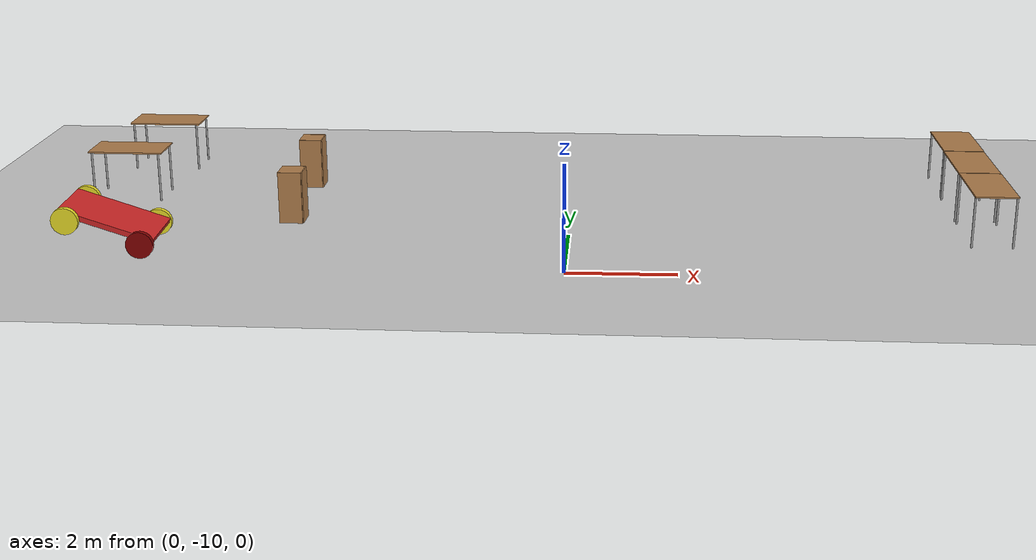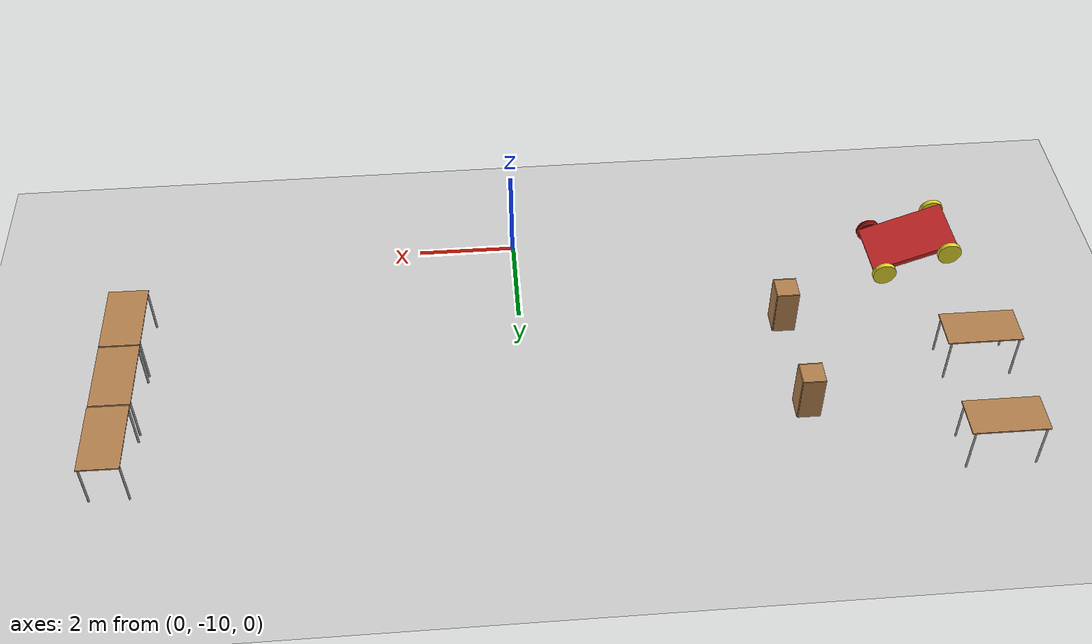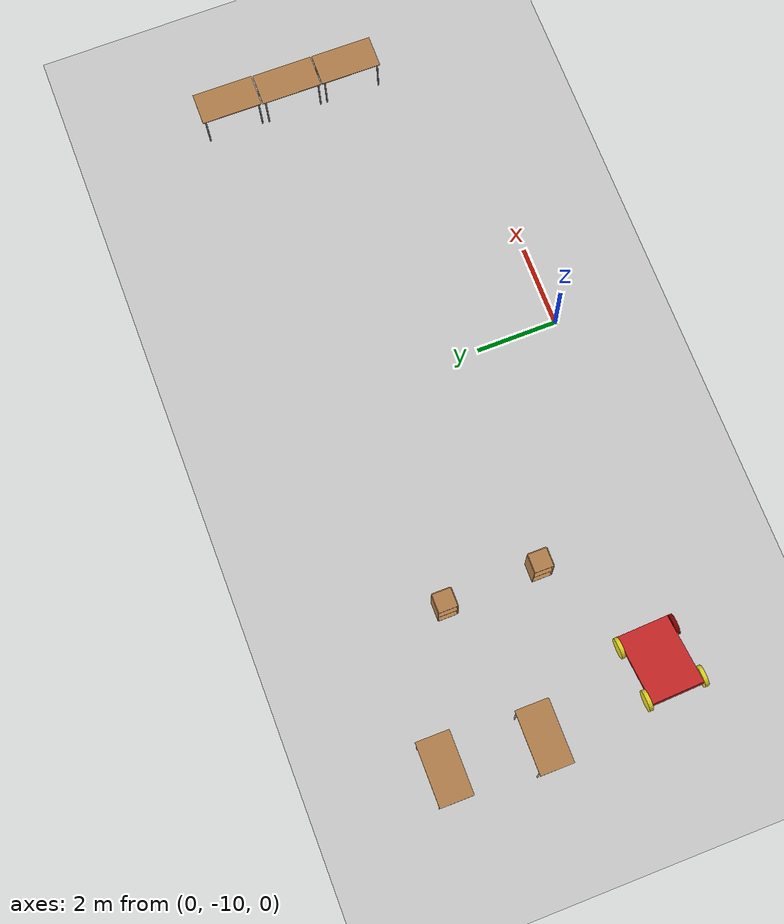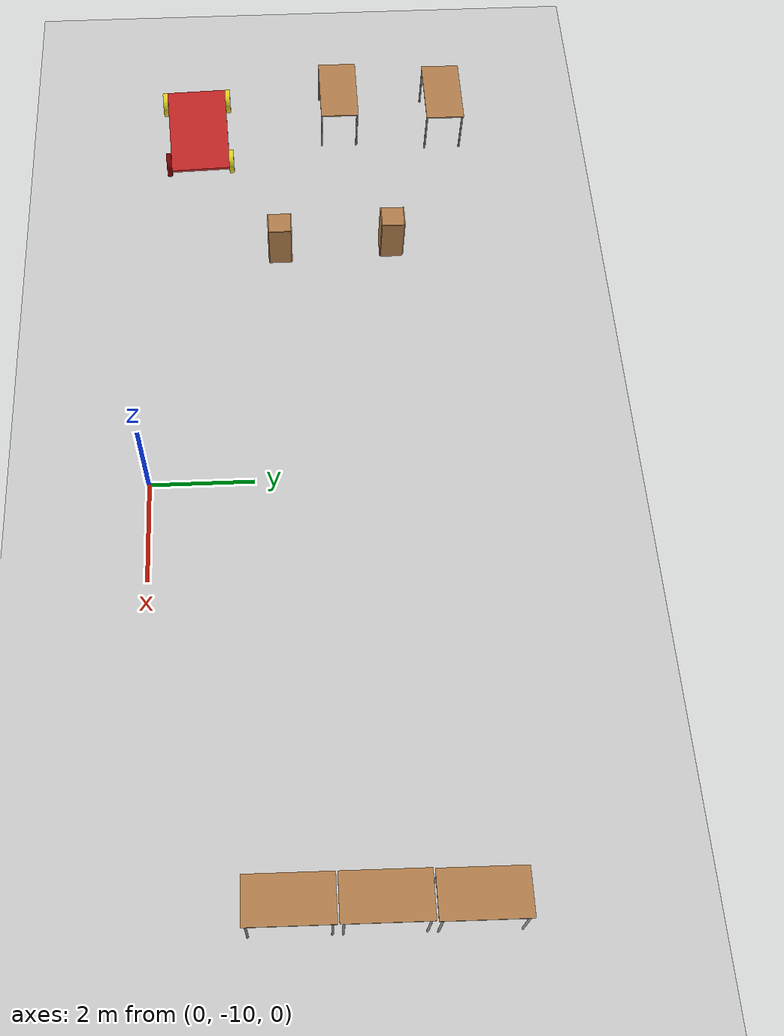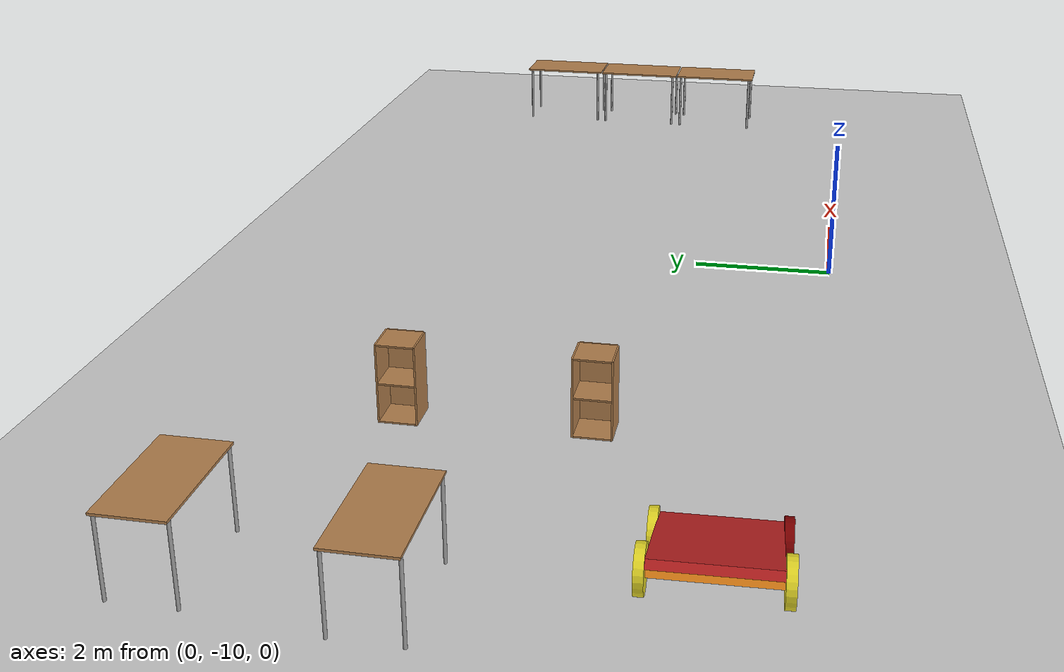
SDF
<sdf version="1.6">
 <world name="default">
  <model name="ground_plane">
   <static>1</static>
   <link name="link">
    <collision name="collision">
     <geometry><plane><normal>0 0 1</normal><size>100 100</size></plane></geometry>
     <surface>
      <contact><collide_bitmask>65535</collide_bitmask></contact>
      <friction><ode><mu>100</mu><mu2>50</mu2></ode></friction>
     </surface>
    </collision>
    <visual name="visual">
     <cast_shadows>0</cast_shadows>
     <geometry><plane><normal>0 0 1</normal><size>100 100</size></plane></geometry>
     <material>
      <script><uri>file://media/materials/scripts/gazebo.material</uri><name>Gazebo/Grey</name></script>
     </material>
    </visual>
   </link>
  </model>
  <model name="table">
   <static>1</static>
   <link name="link">
    <collision name="surface">
     <pose>0 0 1 0 -0 0</pose>
     <geometry><box><size>1.5 0.8 0.03</size></box></geometry>
     <surface><friction><ode><mu>0.6</mu><mu2>0.6</mu2></ode></friction></surface>
    </collision>
    <visual name="visual1">
     <pose>0 0 1 0 -0 0</pose>
     <geometry><box><size>1.5 0.8 0.03</size></box></geometry>
     <material>
      <script><uri>file://media/materials/scripts/gazebo.material</uri><name>Gazebo/Wood</name></script>
     </material>
    </visual>
    <collision name="front_left_leg">
     <pose>0.68 0.38 0.5 0 -0 0</pose>
     <geometry><cylinder><radius>0.02</radius><length>1</length></cylinder></geometry>
    </collision>
    <visual name="front_left_leg">
     <pose>0.68 0.38 0.5 0 -0 0</pose>
     <geometry><cylinder><radius>0.02</radius><length>1</length></cylinder></geometry>
     <material>
      <script><uri>file://media/materials/scripts/gazebo.material</uri><name>Gazebo/Grey</name></script>
     </material>
    </visual>
    <collision name="front_right_leg">
     <pose>0.68 -0.38 0.5 0 -0 0</pose>
     <geometry><cylinder><radius>0.02</radius><length>1</length></cylinder></geometry>
    </collision>
    <visual name="front_right_leg">
     <pose>0.68 -0.38 0.5 0 -0 0</pose>
     <geometry><cylinder><radius>0.02</radius><length>1</length></cylinder></geometry>
     <material>
      <script><uri>file://media/materials/scripts/gazebo.material</uri><name>Gazebo/Grey</name></script>
     </material>
    </visual>
    <collision name="back_right_leg">
     <pose>-0.68 -0.38 0.5 0 -0 0</pose>
     <geometry><cylinder><radius>0.02</radius><length>1</length></cylinder></geometry>
    </collision>
    <visual name="back_right_leg">
     <pose>-0.68 -0.38 0.5 0 -0 0</pose>
     <geometry><cylinder><radius>0.02</radius><length>1</length></cylinder></geometry>
     <material>
      <script><uri>file://media/materials/scripts/gazebo.material</uri><name>Gazebo/Grey</name></script>
     </material>
    </visual>
    <collision name="back_left_leg">
     <pose>-0.68 0.38 0.5 0 -0 0</pose>
     <geometry><cylinder><radius>0.02</radius><length>1</length></cylinder></geometry>
    </collision>
    <visual name="back_left_leg">
     <pose>-0.68 0.38 0.5 0 -0 0</pose>
     <geometry><cylinder><radius>0.02</radius><length>1</length></cylinder></geometry>
     <material>
      <script><uri>file://media/materials/scripts/gazebo.material</uri><name>Gazebo/Grey</name></script>
     </material>
    </visual>
   </link>
   <pose>-8.89453 -3.69923 0 0 -0 0</pose>
  </model>
  <model name="table_0">
   <static>1</static>
   <link name="link">
    <collision name="surface">
     <pose>0 0 1 0 -0 0</pose>
     <geometry><box><size>1.5 0.8 0.03</size></box></geometry>
     <surface><friction><ode><mu>0.6</mu><mu2>0.6</mu2></ode></friction></surface>
    </collision>
    <visual name="visual1">
     <pose>0 0 1 0 -0 0</pose>
     <geometry><box><size>1.5 0.8 0.03</size></box></geometry>
     <material>
      <script><uri>file://media/materials/scripts/gazebo.material</uri><name>Gazebo/Wood</name></script>
     </material>
    </visual>
    <collision name="front_left_leg">
     <pose>0.68 0.38 0.5 0 -0 0</pose>
     <geometry><cylinder><radius>0.02</radius><length>1</length></cylinder></geometry>
    </collision>
    <visual name="front_left_leg">
     <pose>0.68 0.38 0.5 0 -0 0</pose>
     <geometry><cylinder><radius>0.02</radius><length>1</length></cylinder></geometry>
     <material>
      <script><uri>file://media/materials/scripts/gazebo.material</uri><name>Gazebo/Grey</name></script>
     </material>
    </visual>
    <collision name="front_right_leg">
     <pose>0.68 -0.38 0.5 0 -0 0</pose>
     <geometry><cylinder><radius>0.02</radius><length>1</length></cylinder></geometry>
    </collision>
    <visual name="front_right_leg">
     <pose>0.68 -0.38 0.5 0 -0 0</pose>
     <geometry><cylinder><radius>0.02</radius><length>1</length></cylinder></geometry>
     <material>
      <script><uri>file://media/materials/scripts/gazebo.material</uri><name>Gazebo/Grey</name></script>
     </material>
    </visual>
    <collision name="back_right_leg">
     <pose>-0.68 -0.38 0.5 0 -0 0</pose>
     <geometry><cylinder><radius>0.02</radius><length>1</length></cylinder></geometry>
    </collision>
    <visual name="back_right_leg">
     <pose>-0.68 -0.38 0.5 0 -0 0</pose>
     <geometry><cylinder><radius>0.02</radius><length>1</length></cylinder></geometry>
     <material>
      <script><uri>file://media/materials/scripts/gazebo.material</uri><name>Gazebo/Grey</name></script>
     </material>
    </visual>
    <collision name="back_left_leg">
     <pose>-0.68 0.38 0.5 0 -0 0</pose>
     <geometry><cylinder><radius>0.02</radius><length>1</length></cylinder></geometry>
    </collision>
    <visual name="back_left_leg">
     <pose>-0.68 0.38 0.5 0 -0 0</pose>
     <geometry><cylinder><radius>0.02</radius><length>1</length></cylinder></geometry>
     <material>
      <script><uri>file://media/materials/scripts/gazebo.material</uri><name>Gazebo/Grey</name></script>
     </material>
    </visual>
   </link>
   <pose>-9.03842 -5.96629 0 0 -0 0</pose>
  </model>
  <model name="cabinet">
   <static>1</static>
   <link name="cabinet_bottom_plate">
    <inertial>
     <pose>0 0 -1 0 -0 0</pose>
     <inertia><ixx>2.05</ixx><ixy>0</ixy><ixz>0</ixz><iyy>2.05</iyy><iyz>0</iyz><izz>2.05</izz></inertia>
     <mass>25</mass>
    </inertial>
    <collision name="cabinet_bottom_plate_geom">
     <pose>0 0 0.01 0 -0 0</pose>
     <geometry><box><size>0.45 0.45 0.02</size></box></geometry>
    </collision>
    <visual name="cabinet_bottom_plate_geom_visual">
     <pose>0 0 0.01 0 -0 0</pose>
     <geometry><box><size>0.45 0.45 0.02</size></box></geometry>
     <material>
      <script><uri>file://media/materials/scripts/gazebo.material</uri><name>Gazebo/Wood</name></script>
     </material>
    </visual>
    <collision name="cabinet_bottom_plate_geom_cabinet_back_plate">
     <pose>0.235 0 0.51 0 -0 0</pose>
     <geometry><box><size>0.02 0.45 1.02</size></box></geometry>
    </collision>
    <visual name="cabinet_bottom_plate_geom_cabinet_back_plate_visual">
     <pose>0.235 0 0.51 0 -0 0</pose>
     <geometry><box><size>0.02 0.45 1.02</size></box></geometry>
     <material>
      <script><uri>file://media/materials/scripts/gazebo.material</uri><name>Gazebo/Wood</name></script>
     </material>
    </visual>
    <collision name="cabinet_bottom_plate_geom_cabinet_left_plate">
     <pose>0 0.235 0.51 0 -0 0</pose>
     <geometry><box><size>0.45 0.02 1.02</size></box></geometry>
    </collision>
    <visual name="cabinet_bottom_plate_geom_cabinet_left_plate_visual">
     <pose>0 0.235 0.51 0 -0 0</pose>
     <geometry><box><size>0.45 0.02 1.02</size></box></geometry>
     <material>
      <script><uri>file://media/materials/scripts/gazebo.material</uri><name>Gazebo/Wood</name></script>
     </material>
    </visual>
    <collision name="cabinet_bottom_plate_geom_cabinet_middle_plate">
     <pose>0 0 0.51 0 -0 0</pose>
     <geometry><box><size>0.45 0.45 0.02</size></box></geometry>
    </collision>
    <visual name="cabinet_bottom_plate_geom_cabinet_middle_plate_visual">
     <pose>0 0 0.51 0 -0 0</pose>
     <geometry><box><size>0.45 0.45 0.02</size></box></geometry>
     <material>
      <script><uri>file://media/materials/scripts/gazebo.material</uri><name>Gazebo/Wood</name></script>
     </material>
    </visual>
    <collision name="cabinet_bottom_plate_geom_cabinet_right_plate">
     <pose>0 -0.235 0.51 0 -0 0</pose>
     <geometry><box><size>0.45 0.02 1.02</size></box></geometry>
    </collision>
    <visual name="cabinet_bottom_plate_geom_cabinet_right_plate_visual">
     <pose>0 -0.235 0.51 0 -0 0</pose>
     <geometry><box><size>0.45 0.02 1.02</size></box></geometry>
     <material>
      <script><uri>file://media/materials/scripts/gazebo.material</uri><name>Gazebo/Wood</name></script>
     </material>
    </visual>
    <collision name="cabinet_bottom_plate_geom_cabinet_top_plate">
     <pose>0 0 1.01 0 -0 0</pose>
     <geometry><box><size>0.45 0.45 0.02</size></box></geometry>
    </collision>
    <visual name="cabinet_bottom_plate_geom_cabinet_top_plate_visual">
     <pose>0 0 1.01 0 -0 0</pose>
     <geometry><box><size>0.45 0.45 0.02</size></box></geometry>
     <material>
      <script><uri>file://media/materials/scripts/gazebo.material</uri><name>Gazebo/Wood</name></script>
     </material>
    </visual>
   </link>
   <pose>-5.48498 -5.024 0 0 -0 0</pose>
  </model>
  <model name="cabinet_0">
   <static>1</static>
   <link name="cabinet_bottom_plate">
    <inertial>
     <pose>0 0 -1 0 -0 0</pose>
     <inertia><ixx>2.05</ixx><ixy>0</ixy><ixz>0</ixz><iyy>2.05</iyy><iyz>0</iyz><izz>2.05</izz></inertia>
     <mass>25</mass>
    </inertial>
    <collision name="cabinet_bottom_plate_geom">
     <pose>0 0 0.01 0 -0 0</pose>
     <geometry><box><size>0.45 0.45 0.02</size></box></geometry>
    </collision>
    <visual name="cabinet_bottom_plate_geom_visual">
     <pose>0 0 0.01 0 -0 0</pose>
     <geometry><box><size>0.45 0.45 0.02</size></box></geometry>
     <material>
      <script><uri>file://media/materials/scripts/gazebo.material</uri><name>Gazebo/Wood</name></script>
     </material>
    </visual>
    <collision name="cabinet_bottom_plate_geom_cabinet_back_plate">
     <pose>0.235 0 0.51 0 -0 0</pose>
     <geometry><box><size>0.02 0.45 1.02</size></box></geometry>
    </collision>
    <visual name="cabinet_bottom_plate_geom_cabinet_back_plate_visual">
     <pose>0.235 0 0.51 0 -0 0</pose>
     <geometry><box><size>0.02 0.45 1.02</size></box></geometry>
     <material>
      <script><uri>file://media/materials/scripts/gazebo.material</uri><name>Gazebo/Wood</name></script>
     </material>
    </visual>
    <collision name="cabinet_bottom_plate_geom_cabinet_left_plate">
     <pose>0 0.235 0.51 0 -0 0</pose>
     <geometry><box><size>0.45 0.02 1.02</size></box></geometry>
    </collision>
    <visual name="cabinet_bottom_plate_geom_cabinet_left_plate_visual">
     <pose>0 0.235 0.51 0 -0 0</pose>
     <geometry><box><size>0.45 0.02 1.02</size></box></geometry>
     <material>
      <script><uri>file://media/materials/scripts/gazebo.material</uri><name>Gazebo/Wood</name></script>
     </material>
    </visual>
    <collision name="cabinet_bottom_plate_geom_cabinet_middle_plate">
     <pose>0 0 0.51 0 -0 0</pose>
     <geometry><box><size>0.45 0.45 0.02</size></box></geometry>
    </collision>
    <visual name="cabinet_bottom_plate_geom_cabinet_middle_plate_visual">
     <pose>0 0 0.51 0 -0 0</pose>
     <geometry><box><size>0.45 0.45 0.02</size></box></geometry>
     <material>
      <script><uri>file://media/materials/scripts/gazebo.material</uri><name>Gazebo/Wood</name></script>
     </material>
    </visual>
    <collision name="cabinet_bottom_plate_geom_cabinet_right_plate">
     <pose>0 -0.235 0.51 0 -0 0</pose>
     <geometry><box><size>0.45 0.02 1.02</size></box></geometry>
    </collision>
    <visual name="cabinet_bottom_plate_geom_cabinet_right_plate_visual">
     <pose>0 -0.235 0.51 0 -0 0</pose>
     <geometry><box><size>0.45 0.02 1.02</size></box></geometry>
     <material>
      <script><uri>file://media/materials/scripts/gazebo.material</uri><name>Gazebo/Wood</name></script>
     </material>
    </visual>
    <collision name="cabinet_bottom_plate_geom_cabinet_top_plate">
     <pose>0 0 1.01 0 -0 0</pose>
     <geometry><box><size>0.45 0.45 0.02</size></box></geometry>
    </collision>
    <visual name="cabinet_bottom_plate_geom_cabinet_top_plate_visual">
     <pose>0 0 1.01 0 -0 0</pose>
     <geometry><box><size>0.45 0.45 0.02</size></box></geometry>
     <material>
      <script><uri>file://media/materials/scripts/gazebo.material</uri><name>Gazebo/Wood</name></script>
     </material>
    </visual>
   </link>
   <pose>-5.41384 -7.35141 0 0 -0 0</pose>
  </model>
  <model name="table_1">
   <static>1</static>
   <link name="link">
    <collision name="surface">
     <pose>0 0 1 0 -0 0</pose>
     <geometry><box><size>1.5 0.8 0.03</size></box></geometry>
     <surface><friction><ode><mu>0.6</mu><mu2>0.6</mu2></ode></friction></surface>
    </collision>
    <visual name="visual1">
     <pose>0 0 1 0 -0 0</pose>
     <geometry><box><size>1.5 0.8 0.03</size></box></geometry>
     <material>
      <script><uri>file://media/materials/scripts/gazebo.material</uri><name>Gazebo/Wood</name></script>
     </material>
    </visual>
    <collision name="front_left_leg">
     <pose>0.68 0.38 0.5 0 -0 0</pose>
     <geometry><cylinder><radius>0.02</radius><length>1</length></cylinder></geometry>
    </collision>
    <visual name="front_left_leg">
     <pose>0.68 0.38 0.5 0 -0 0</pose>
     <geometry><cylinder><radius>0.02</radius><length>1</length></cylinder></geometry>
     <material>
      <script><uri>file://media/materials/scripts/gazebo.material</uri><name>Gazebo/Grey</name></script>
     </material>
    </visual>
    <collision name="front_right_leg">
     <pose>0.68 -0.38 0.5 0 -0 0</pose>
     <geometry><cylinder><radius>0.02</radius><length>1</length></cylinder></geometry>
    </collision>
    <visual name="front_right_leg">
     <pose>0.68 -0.38 0.5 0 -0 0</pose>
     <geometry><cylinder><radius>0.02</radius><length>1</length></cylinder></geometry>
     <material>
      <script><uri>file://media/materials/scripts/gazebo.material</uri><name>Gazebo/Grey</name></script>
     </material>
    </visual>
    <collision name="back_right_leg">
     <pose>-0.68 -0.38 0.5 0 -0 0</pose>
     <geometry><cylinder><radius>0.02</radius><length>1</length></cylinder></geometry>
    </collision>
    <visual name="back_right_leg">
     <pose>-0.68 -0.38 0.5 0 -0 0</pose>
     <geometry><cylinder><radius>0.02</radius><length>1</length></cylinder></geometry>
     <material>
      <script><uri>file://media/materials/scripts/gazebo.material</uri><name>Gazebo/Grey</name></script>
     </material>
    </visual>
    <collision name="back_left_leg">
     <pose>-0.68 0.38 0.5 0 -0 0</pose>
     <geometry><cylinder><radius>0.02</radius><length>1</length></cylinder></geometry>
    </collision>
    <visual name="back_left_leg">
     <pose>-0.68 0.38 0.5 0 -0 0</pose>
     <geometry><cylinder><radius>0.02</radius><length>1</length></cylinder></geometry>
     <material>
      <script><uri>file://media/materials/scripts/gazebo.material</uri><name>Gazebo/Grey</name></script>
     </material>
    </visual>
   </link>
   <pose>7.89959 -4.52252 0 0 0 -1.57913</pose>
  </model>
  <model name="table_1_clone">
   <static>1</static>
   <link name="link">
    <collision name="surface">
     <pose>0 0 1 0 -0 0</pose>
     <geometry><box><size>1.5 0.8 0.03</size></box></geometry>
     <surface><friction><ode><mu>0.6</mu><mu2>0.6</mu2></ode></friction></surface>
    </collision>
    <visual name="visual1">
     <pose>0 0 1 0 -0 0</pose>
     <geometry><box><size>1.5 0.8 0.03</size></box></geometry>
     <material>
      <script><uri>file://media/materials/scripts/gazebo.material</uri><name>Gazebo/Wood</name></script>
     </material>
    </visual>
    <collision name="front_left_leg">
     <pose>0.68 0.38 0.5 0 -0 0</pose>
     <geometry><cylinder><radius>0.02</radius><length>1</length></cylinder></geometry>
    </collision>
    <visual name="front_left_leg">
     <pose>0.68 0.38 0.5 0 -0 0</pose>
     <geometry><cylinder><radius>0.02</radius><length>1</length></cylinder></geometry>
     <material>
      <script><uri>file://media/materials/scripts/gazebo.material</uri><name>Gazebo/Grey</name></script>
     </material>
    </visual>
    <collision name="front_right_leg">
     <pose>0.68 -0.38 0.5 0 -0 0</pose>
     <geometry><cylinder><radius>0.02</radius><length>1</length></cylinder></geometry>
    </collision>
    <visual name="front_right_leg">
     <pose>0.68 -0.38 0.5 0 -0 0</pose>
     <geometry><cylinder><radius>0.02</radius><length>1</length></cylinder></geometry>
     <material>
      <script><uri>file://media/materials/scripts/gazebo.material</uri><name>Gazebo/Grey</name></script>
     </material>
    </visual>
    <collision name="back_right_leg">
     <pose>-0.68 -0.38 0.5 0 -0 0</pose>
     <geometry><cylinder><radius>0.02</radius><length>1</length></cylinder></geometry>
    </collision>
    <visual name="back_right_leg">
     <pose>-0.68 -0.38 0.5 0 -0 0</pose>
     <geometry><cylinder><radius>0.02</radius><length>1</length></cylinder></geometry>
     <material>
      <script><uri>file://media/materials/scripts/gazebo.material</uri><name>Gazebo/Grey</name></script>
     </material>
    </visual>
    <collision name="back_left_leg">
     <pose>-0.68 0.38 0.5 0 -0 0</pose>
     <geometry><cylinder><radius>0.02</radius><length>1</length></cylinder></geometry>
    </collision>
    <visual name="back_left_leg">
     <pose>-0.68 0.38 0.5 0 -0 0</pose>
     <geometry><cylinder><radius>0.02</radius><length>1</length></cylinder></geometry>
     <material>
      <script><uri>file://media/materials/scripts/gazebo.material</uri><name>Gazebo/Grey</name></script>
     </material>
    </visual>
   </link>
   <pose>7.87584 -6.05432 0 0 0 -1.57913</pose>
  </model>
  <model name="table_1_clone_0">
   <static>1</static>
   <link name="link">
    <collision name="surface">
     <pose>0 0 1 0 -0 0</pose>
     <geometry><box><size>1.5 0.8 0.03</size></box></geometry>
     <surface><friction><ode><mu>0.6</mu><mu2>0.6</mu2></ode></friction></surface>
    </collision>
    <visual name="visual1">
     <pose>0 0 1 0 -0 0</pose>
     <geometry><box><size>1.5 0.8 0.03</size></box></geometry>
     <material>
      <script><uri>file://media/materials/scripts/gazebo.material</uri><name>Gazebo/Wood</name></script>
     </material>
    </visual>
    <collision name="front_left_leg">
     <pose>0.68 0.38 0.5 0 -0 0</pose>
     <geometry><cylinder><radius>0.02</radius><length>1</length></cylinder></geometry>
    </collision>
    <visual name="front_left_leg">
     <pose>0.68 0.38 0.5 0 -0 0</pose>
     <geometry><cylinder><radius>0.02</radius><length>1</length></cylinder></geometry>
     <material>
      <script><uri>file://media/materials/scripts/gazebo.material</uri><name>Gazebo/Grey</name></script>
     </material>
    </visual>
    <collision name="front_right_leg">
     <pose>0.68 -0.38 0.5 0 -0 0</pose>
     <geometry><cylinder><radius>0.02</radius><length>1</length></cylinder></geometry>
    </collision>
    <visual name="front_right_leg">
     <pose>0.68 -0.38 0.5 0 -0 0</pose>
     <geometry><cylinder><radius>0.02</radius><length>1</length></cylinder></geometry>
     <material>
      <script><uri>file://media/materials/scripts/gazebo.material</uri><name>Gazebo/Grey</name></script>
     </material>
    </visual>
    <collision name="back_right_leg">
     <pose>-0.68 -0.38 0.5 0 -0 0</pose>
     <geometry><cylinder><radius>0.02</radius><length>1</length></cylinder></geometry>
    </collision>
    <visual name="back_right_leg">
     <pose>-0.68 -0.38 0.5 0 -0 0</pose>
     <geometry><cylinder><radius>0.02</radius><length>1</length></cylinder></geometry>
     <material>
      <script><uri>file://media/materials/scripts/gazebo.material</uri><name>Gazebo/Grey</name></script>
     </material>
    </visual>
    <collision name="back_left_leg">
     <pose>-0.68 0.38 0.5 0 -0 0</pose>
     <geometry><cylinder><radius>0.02</radius><length>1</length></cylinder></geometry>
    </collision>
    <visual name="back_left_leg">
     <pose>-0.68 0.38 0.5 0 -0 0</pose>
     <geometry><cylinder><radius>0.02</radius><length>1</length></cylinder></geometry>
     <material>
      <script><uri>file://media/materials/scripts/gazebo.material</uri><name>Gazebo/Grey</name></script>
     </material>
    </visual>
   </link>
   <pose>7.86338 -7.5835 0 0 0 -1.57913</pose>
  </model>
  <model name="rover_0">
   <link name="link_0">
    <inertial>
     <mass>1</mass>
     <inertia>
      <ixx>0.0164583</ixx>
      <ixy>0</ixy>
      <ixz>0</ixz>
      <iyy>0.0164583</iyy>
      <iyz>0</iyz>
      <izz>0.03125</izz>
     </inertia>
    </inertial>
    <pose>0.7 -0.675024 0.25 1.5707 -0 0</pose>
    <visual name="visual">
     <geometry><cylinder><radius>0.25</radius><length>0.1</length></cylinder></geometry>
     <material>
      <lighting>1</lighting>
      <script><uri>file://media/materials/scripts/gazebo.material</uri><name>Gazebo/Grey</name></script>
      <shader type="vertex"><normal_map>__default__</normal_map></shader>
      <ambient>0.5 0 0 1</ambient>
      <diffuse>0.5 0 0 1</diffuse>
      <specular>0.5 0 0 1</specular>
      <emissive>0.5 0 0 1</emissive>
     </material>
    </visual>
    <collision name="collision">
     <geometry><cylinder><radius>0.25</radius><length>0.1</length></cylinder></geometry>
     <surface>
      <friction>
       <ode><mu>1</mu><mu2>1</mu2><fdir1>0 0 0</fdir1><slip1>0</slip1><slip2>0</slip2></ode>
       <torsional>
        <coefficient>1</coefficient>
        <patch_radius>0</patch_radius>
        <surface_radius>0</surface_radius>
        <use_patch_radius>1</use_patch_radius>
        <ode><slip>0</slip></ode>
       </torsional>
      </friction>
      <bounce><restitution_coefficient>0</restitution_coefficient><threshold>1e+06</threshold></bounce>
      <contact>
       <collide_without_contact>0</collide_without_contact>
       <collide_without_contact_bitmask>1</collide_without_contact_bitmask>
       <collide_bitmask>1</collide_bitmask>
       <ode>
        <soft_cfm>0</soft_cfm>
        <soft_erp>0.2</soft_erp>
        <kp>1e+13</kp>
        <kd>1</kd>
        <max_vel>0.01</max_vel>
        <min_depth>0</min_depth>
       </ode>
       <bullet>
        <split_impulse>1</split_impulse>
        <split_impulse_penetration_threshold>-0.01</split_impulse_penetration_threshold>
        <soft_cfm>0</soft_cfm>
        <soft_erp>0.2</soft_erp>
        <kp>1e+13</kp>
        <kd>1</kd>
       </bullet>
      </contact>
     </surface>
    </collision>
   </link>
   <link name="link_0_0">
    <inertial>
     <mass>0.341385</mass>
     <inertia>
      <ixx>0.0369487</ixx>
      <ixy>0</ixy>
      <ixz>0</ixz>
      <iyy>0.147803</iyy>
      <iyz>0</iyz>
      <izz>0.183752</izz>
     </inertia>
    </inertial>
    <pose>-0 0 0.35 0 -0 0</pose>
    <visual name="visual">
     <geometry><box><size>1.8 1.25 0.1</size></box></geometry>
     <material>
      <lighting>1</lighting>
      <script><uri>file://media/materials/scripts/gazebo.material</uri><name>Gazebo/Red</name></script>
      <shader type="vertex"><normal_map>__default__</normal_map></shader>
      <ambient>1 0 0 1</ambient>
      <diffuse>1 0 0 1</diffuse>
      <specular>1 0 0 1</specular>
      <emissive>1 0 0 1</emissive>
     </material>
    </visual>
    <collision name="collision">
     <geometry><box><size>1.8 1.25 0.1</size></box></geometry>
     <surface>
      <friction>
       <ode><mu>1</mu><mu2>1</mu2><fdir1>0 0 0</fdir1><slip1>0</slip1><slip2>0</slip2></ode>
       <torsional>
        <coefficient>1</coefficient>
        <patch_radius>0</patch_radius>
        <surface_radius>0</surface_radius>
        <use_patch_radius>1</use_patch_radius>
        <ode><slip>0</slip></ode>
       </torsional>
      </friction>
      <bounce><restitution_coefficient>0</restitution_coefficient><threshold>1e+06</threshold></bounce>
      <contact>
       <collide_without_contact>0</collide_without_contact>
       <collide_without_contact_bitmask>1</collide_without_contact_bitmask>
       <collide_bitmask>1</collide_bitmask>
       <ode>
        <soft_cfm>0</soft_cfm>
        <soft_erp>0.2</soft_erp>
        <kp>1e+13</kp>
        <kd>1</kd>
        <max_vel>0.01</max_vel>
        <min_depth>0</min_depth>
       </ode>
       <bullet>
        <split_impulse>1</split_impulse>
        <split_impulse_penetration_threshold>-0.01</split_impulse_penetration_threshold>
        <soft_cfm>0</soft_cfm>
        <soft_erp>0.2</soft_erp>
        <kp>1e+13</kp>
        <kd>1</kd>
       </bullet>
      </contact>
     </surface>
    </collision>
   </link>
   <link name="link_0_clone">
    <inertial>
     <mass>1</mass>
     <inertia><ixx>0.145833</ixx><ixy>0</ixy><ixz>0</ixz><iyy>0.145833</iyy><iyz>0</iyz><izz>0.125</izz></inertia>
    </inertial>
    <pose>0.7 0.667373 0.250004 1.5707 -0 0</pose>
    <visual name="visual">
     <geometry><cylinder><radius>0.25</radius><length>0.1</length></cylinder></geometry>
     <material>
      <lighting>1</lighting>
      <script><uri>file://media/materials/scripts/gazebo.material</uri><name>Gazebo/Yellow</name></script>
      <shader type="vertex"><normal_map>__default__</normal_map></shader>
      <ambient>0.5 0 0 1</ambient>
      <diffuse>0.5 0 0 1</diffuse>
      <specular>0.5 0 0 1</specular>
      <emissive>0.5 0 0 1</emissive>
     </material>
    </visual>
    <collision name="collision">
     <geometry><cylinder><radius>0.25</radius><length>0.1</length></cylinder></geometry>
     <surface>
      <friction>
       <ode><mu>1</mu><mu2>1</mu2><fdir1>0 0 0</fdir1><slip1>0</slip1><slip2>0</slip2></ode>
       <torsional>
        <coefficient>1</coefficient>
        <patch_radius>0</patch_radius>
        <surface_radius>0</surface_radius>
        <use_patch_radius>1</use_patch_radius>
        <ode><slip>0</slip></ode>
       </torsional>
      </friction>
      <bounce><restitution_coefficient>0</restitution_coefficient><threshold>1e+06</threshold></bounce>
      <contact>
       <collide_without_contact>0</collide_without_contact>
       <collide_without_contact_bitmask>1</collide_without_contact_bitmask>
       <collide_bitmask>1</collide_bitmask>
       <ode>
        <soft_cfm>0</soft_cfm>
        <soft_erp>0.2</soft_erp>
        <kp>1e+13</kp>
        <kd>1</kd>
        <max_vel>0.01</max_vel>
        <min_depth>0</min_depth>
       </ode>
       <bullet>
        <split_impulse>1</split_impulse>
        <split_impulse_penetration_threshold>-0.01</split_impulse_penetration_threshold>
        <soft_cfm>0</soft_cfm>
        <soft_erp>0.2</soft_erp>
        <kp>1e+13</kp>
        <kd>1</kd>
       </bullet>
      </contact>
     </surface>
    </collision>
   </link>
   <link name="link_0_clone_0">
    <inertial>
     <mass>1</mass>
     <inertia>
      <ixx>0.0164583</ixx>
      <ixy>0</ixy>
      <ixz>0</ixz>
      <iyy>0.0164583</iyy>
      <iyz>0</iyz>
      <izz>0.03125</izz>
     </inertia>
    </inertial>
    <pose>-0.7 -0.67687 0.25 1.5707 -0 0</pose>
    <visual name="visual">
     <geometry><cylinder><radius>0.25</radius><length>0.1</length></cylinder></geometry>
     <material>
      <lighting>1</lighting>
      <script><uri>file://media/materials/scripts/gazebo.material</uri><name>Gazebo/Yellow</name></script>
      <shader type="vertex"><normal_map>__default__</normal_map></shader>
      <ambient>0.5 0 0 1</ambient>
      <diffuse>0.5 0 0 1</diffuse>
      <specular>0.5 0 0 1</specular>
      <emissive>0.5 0 0 1</emissive>
     </material>
    </visual>
    <collision name="collision">
     <geometry><cylinder><radius>0.25</radius><length>0.1</length></cylinder></geometry>
     <surface>
      <friction>
       <ode><mu>1</mu><mu2>1</mu2><fdir1>0 0 0</fdir1><slip1>0</slip1><slip2>0</slip2></ode>
       <torsional>
        <coefficient>1</coefficient>
        <patch_radius>0</patch_radius>
        <surface_radius>0</surface_radius>
        <use_patch_radius>1</use_patch_radius>
        <ode><slip>0</slip></ode>
       </torsional>
      </friction>
      <bounce><restitution_coefficient>0</restitution_coefficient><threshold>1e+06</threshold></bounce>
      <contact>
       <collide_without_contact>0</collide_without_contact>
       <collide_without_contact_bitmask>1</collide_without_contact_bitmask>
       <collide_bitmask>1</collide_bitmask>
       <ode>
        <soft_cfm>0</soft_cfm>
        <soft_erp>0.2</soft_erp>
        <kp>1e+13</kp>
        <kd>1</kd>
        <max_vel>0.01</max_vel>
        <min_depth>0</min_depth>
       </ode>
       <bullet>
        <split_impulse>1</split_impulse>
        <split_impulse_penetration_threshold>-0.01</split_impulse_penetration_threshold>
        <soft_cfm>0</soft_cfm>
        <soft_erp>0.2</soft_erp>
        <kp>1e+13</kp>
        <kd>1</kd>
       </bullet>
      </contact>
     </surface>
    </collision>
   </link>
   <link name="link_0_clone_0_clone">
    <inertial>
     <mass>1</mass>
     <inertia>
      <ixx>0.0164583</ixx>
      <ixy>0</ixy>
      <ixz>0</ixz>
      <iyy>0.0164583</iyy>
      <iyz>0</iyz>
      <izz>0.03125</izz>
     </inertia>
    </inertial>
    <pose>-0.7 0.673178 0.25 1.5707 -0 0</pose>
    <visual name="visual">
     <geometry><cylinder><radius>0.25</radius><length>0.1</length></cylinder></geometry>
     <material>
      <lighting>1</lighting>
      <script><uri>file://media/materials/scripts/gazebo.material</uri><name>Gazebo/Yellow</name></script>
      <shader type="vertex"><normal_map>__default__</normal_map></shader>
      <ambient>0.5 0 0 1</ambient>
      <diffuse>0.5 0 0 1</diffuse>
      <specular>0.5 0 0 1</specular>
      <emissive>0.5 0 0 1</emissive>
     </material>
    </visual>
    <collision name="collision">
     <geometry><cylinder><radius>0.25</radius><length>0.1</length></cylinder></geometry>
     <surface>
      <friction>
       <ode><mu>1</mu><mu2>1</mu2><fdir1>0 0 0</fdir1><slip1>0</slip1><slip2>0</slip2></ode>
       <torsional>
        <coefficient>1</coefficient>
        <patch_radius>0</patch_radius>
        <surface_radius>0</surface_radius>
        <use_patch_radius>1</use_patch_radius>
        <ode><slip>0</slip></ode>
       </torsional>
      </friction>
      <bounce><restitution_coefficient>0</restitution_coefficient><threshold>1e+06</threshold></bounce>
      <contact>
       <collide_without_contact>0</collide_without_contact>
       <collide_without_contact_bitmask>1</collide_without_contact_bitmask>
       <collide_bitmask>1</collide_bitmask>
       <ode>
        <soft_cfm>0</soft_cfm>
        <soft_erp>0.2</soft_erp>
        <kp>1e+13</kp>
        <kd>1</kd>
        <max_vel>0.01</max_vel>
        <min_depth>0</min_depth>
       </ode>
       <bullet>
        <split_impulse>1</split_impulse>
        <split_impulse_penetration_threshold>-0.01</split_impulse_penetration_threshold>
        <soft_cfm>0</soft_cfm>
        <soft_erp>0.2</soft_erp>
        <kp>1e+13</kp>
        <kd>1</kd>
       </bullet>
      </contact>
     </surface>
    </collision>
   </link>
   <link name="link_1">
    <inertial>
     <mass>1</mass>
     <inertia>
      <ixx>0.166667</ixx>
      <ixy>0</ixy>
      <ixz>0</ixz>
      <iyy>0.166667</iyy>
      <iyz>0</iyz>
      <izz>0.166667</izz>
     </inertia>
    </inertial>
    <pose>0.7 -0 0.25 0 -0 0</pose>
    <visual name="visual">
     <geometry><box><size>0.2 1.25 0.1</size></box></geometry>
     <material>
      <lighting>1</lighting>
      <script><uri>file://media/materials/scripts/gazebo.material</uri><name>Gazebo/Orange</name></script>
      <emissive>0 0 0 1</emissive>
      <shader type="vertex"><normal_map>__default__</normal_map></shader>
      <ambient>0.3 0.3 0.3 1</ambient>
      <diffuse>0.7 0.7 0.7 1</diffuse>
      <specular>0.01 0.01 0.01 1</specular>
     </material>
    </visual>
    <collision name="collision">
     <geometry><box><size>0.2 1.25 0.1</size></box></geometry>
     <surface>
      <friction>
       <ode><mu>1</mu><mu2>1</mu2><fdir1>0 0 0</fdir1><slip1>0</slip1><slip2>0</slip2></ode>
       <torsional>
        <coefficient>1</coefficient>
        <patch_radius>0</patch_radius>
        <surface_radius>0</surface_radius>
        <use_patch_radius>1</use_patch_radius>
        <ode><slip>0</slip></ode>
       </torsional>
      </friction>
      <bounce><restitution_coefficient>0</restitution_coefficient><threshold>1e+06</threshold></bounce>
      <contact>
       <collide_without_contact>0</collide_without_contact>
       <collide_without_contact_bitmask>1</collide_without_contact_bitmask>
       <collide_bitmask>1</collide_bitmask>
       <ode>
        <soft_cfm>0</soft_cfm>
        <soft_erp>0.2</soft_erp>
        <kp>1e+13</kp>
        <kd>1</kd>
        <max_vel>0.01</max_vel>
        <min_depth>0</min_depth>
       </ode>
       <bullet>
        <split_impulse>1</split_impulse>
        <split_impulse_penetration_threshold>-0.01</split_impulse_penetration_threshold>
        <soft_cfm>0</soft_cfm>
        <soft_erp>0.2</soft_erp>
        <kp>1e+13</kp>
        <kd>1</kd>
       </bullet>
      </contact>
     </surface>
    </collision>
   </link>
   <link name="link_1_clone">
    <inertial>
     <mass>1</mass>
     <inertia>
      <ixx>0.166667</ixx>
      <ixy>0</ixy>
      <ixz>0</ixz>
      <iyy>0.166667</iyy>
      <iyz>0</iyz>
      <izz>0.166667</izz>
     </inertia>
    </inertial>
    <pose>-0.7 -0.001846 0.25 0 -0 0</pose>
    <visual name="visual">
     <geometry><box><size>0.2 1.25 0.1</size></box></geometry>
     <material>
      <lighting>1</lighting>
      <script><uri>file://media/materials/scripts/gazebo.material</uri><name>Gazebo/Orange</name></script>
      <emissive>0 0 0 1</emissive>
      <shader type="vertex"><normal_map>__default__</normal_map></shader>
      <ambient>0.3 0.3 0.3 1</ambient>
      <diffuse>0.7 0.7 0.7 1</diffuse>
      <specular>0.01 0.01 0.01 1</specular>
     </material>
    </visual>
    <collision name="collision">
     <geometry><box><size>0.2 1.25 0.1</size></box></geometry>
     <surface>
      <friction>
       <ode><mu>1</mu><mu2>1</mu2><fdir1>0 0 0</fdir1><slip1>0</slip1><slip2>0</slip2></ode>
       <torsional>
        <coefficient>1</coefficient>
        <patch_radius>0</patch_radius>
        <surface_radius>0</surface_radius>
        <use_patch_radius>1</use_patch_radius>
        <ode><slip>0</slip></ode>
       </torsional>
      </friction>
      <bounce><restitution_coefficient>0</restitution_coefficient><threshold>1e+06</threshold></bounce>
      <contact>
       <collide_without_contact>0</collide_without_contact>
       <collide_without_contact_bitmask>1</collide_without_contact_bitmask>
       <collide_bitmask>1</collide_bitmask>
       <ode>
        <soft_cfm>0</soft_cfm>
        <soft_erp>0.2</soft_erp>
        <kp>1e+13</kp>
        <kd>1</kd>
        <max_vel>0.01</max_vel>
        <min_depth>0</min_depth>
       </ode>
       <bullet>
        <split_impulse>1</split_impulse>
        <split_impulse_penetration_threshold>-0.01</split_impulse_penetration_threshold>
        <soft_cfm>0</soft_cfm>
        <soft_erp>0.2</soft_erp>
        <kp>1e+13</kp>
        <kd>1</kd>
       </bullet>
      </contact>
     </surface>
    </collision>
   </link>
   <joint name="link_0_0_JOINT_11" type="fixed">
    <parent>link_0_0</parent>
    <child>link_1</child>
    <physics>
     <ode><limit><cfm>0</cfm><erp>0.2</erp></limit><suspension><cfm>0</cfm><erp>0.2</erp></suspension></ode>
    </physics>
   </joint>
   <joint name="link_1_JOINT_3" type="revolute">
    <parent>link_1</parent>
    <child>link_0_clone</child>
    <axis>
     <xyz>0 0 1</xyz>
     <use_parent_model_frame>0</use_parent_model_frame>
     <limit>
      <lower>-1.79769e+308</lower>
      <upper>1.79769e+308</upper>
      <effort>-1</effort>
      <velocity>-1</velocity>
     </limit>
     <dynamics>
      <spring_reference>0</spring_reference>
      <spring_stiffness>0</spring_stiffness>
      <damping>0</damping>
      <friction>0</friction>
     </dynamics>
    </axis>
    <physics>
     <ode><limit><cfm>0</cfm><erp>0.2</erp></limit><suspension><cfm>0</cfm><erp>0.2</erp></suspension></ode>
    </physics>
   </joint>
   <joint name="link_1_JOINT_4" type="revolute">
    <parent>link_1</parent>
    <child>link_0</child>
    <axis>
     <xyz>0 0 1</xyz>
     <use_parent_model_frame>0</use_parent_model_frame>
     <limit>
      <lower>-1.79769e+308</lower>
      <upper>1.79769e+308</upper>
      <effort>-1</effort>
      <velocity>-1</velocity>
     </limit>
     <dynamics>
      <spring_reference>0</spring_reference>
      <spring_stiffness>0</spring_stiffness>
      <damping>0</damping>
      <friction>0</friction>
     </dynamics>
    </axis>
    <physics>
     <ode><limit><cfm>0</cfm><erp>0.2</erp></limit><suspension><cfm>0</cfm><erp>0.2</erp></suspension></ode>
    </physics>
   </joint>
   <joint name="link_1_clone_JOINT_10" type="fixed">
    <parent>link_1_clone</parent>
    <child>link_0_0</child>
    <physics>
     <ode><limit><cfm>0</cfm><erp>0.2</erp></limit><suspension><cfm>0</cfm><erp>0.2</erp></suspension></ode>
    </physics>
   </joint>
   <joint name="link_1_clone_JOINT_7" type="revolute">
    <parent>link_1_clone</parent>
    <child>link_0_clone_0_clone</child>
    <axis>
     <xyz>0 0 1</xyz>
     <use_parent_model_frame>0</use_parent_model_frame>
     <limit>
      <lower>-1.79769e+308</lower>
      <upper>1.79769e+308</upper>
      <effort>-1</effort>
      <velocity>-1</velocity>
     </limit>
     <dynamics>
      <spring_reference>0</spring_reference>
      <spring_stiffness>0</spring_stiffness>
      <damping>0</damping>
      <friction>0</friction>
     </dynamics>
    </axis>
    <physics>
     <ode><limit><cfm>0</cfm><erp>0.2</erp></limit><suspension><cfm>0</cfm><erp>0.2</erp></suspension></ode>
    </physics>
   </joint>
   <joint name="link_1_clone_JOINT_8" type="revolute">
    <parent>link_1_clone</parent>
    <child>link_0_clone_0</child>
    <axis>
     <xyz>0 0 1</xyz>
     <use_parent_model_frame>0</use_parent_model_frame>
     <limit>
      <lower>-1.79769e+308</lower>
      <upper>1.79769e+308</upper>
      <effort>-1</effort>
      <velocity>-1</velocity>
     </limit>
     <dynamics>
      <spring_reference>0</spring_reference>
      <spring_stiffness>0</spring_stiffness>
      <damping>0</damping>
      <friction>0</friction>
     </dynamics>
    </axis>
    <physics>
     <ode><limit><cfm>0</cfm><erp>0.2</erp></limit><suspension><cfm>0</cfm><erp>0.2</erp></suspension></ode>
    </physics>
   </joint>
   <static>0</static>
   <pose>-8.49093 -9.04123 0.237127 4e-06 0.325703 0.037226</pose>
  </model>
 </world>
</sdf>
